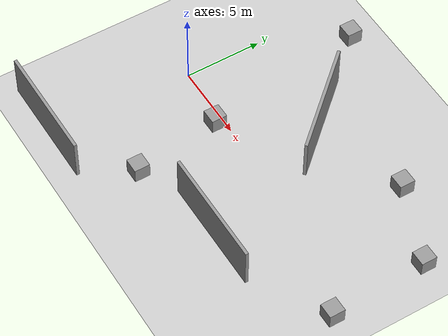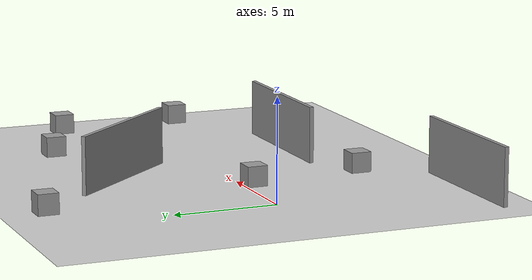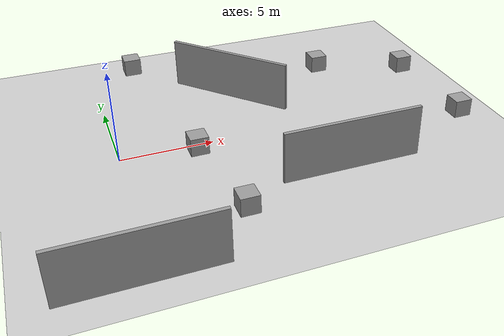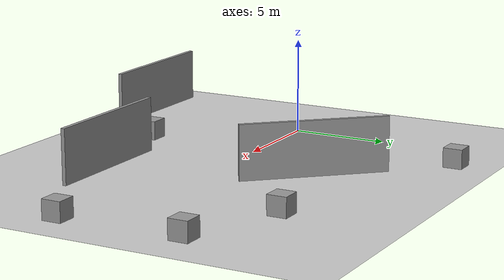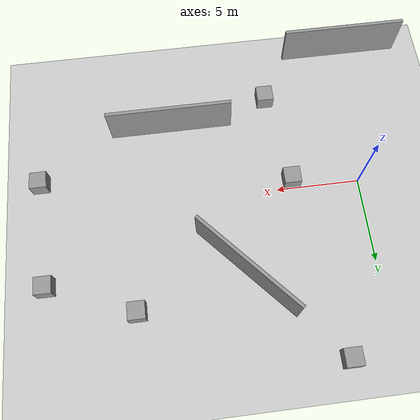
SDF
<sdf version="1.5">
 <world name="default">
  <model name="ground_plane">
   <static>1</static>
   <link name="link">
    <collision name="collision">
     <geometry><plane><normal>0 0 1</normal><size>100 100</size></plane></geometry>
     <surface><friction><ode><mu>100</mu><mu2>50</mu2></ode></friction></surface>
    </collision>
    <visual name="visual">
     <cast_shadows>0</cast_shadows>
     <geometry><plane><normal>0 0 1</normal><size>100 100</size></plane></geometry>
     <material>
      <script><uri>file://media/materials/scripts/gazebo.material</uri><name>Gazebo/Grey</name></script>
     </material>
    </visual>
   </link>
  </model>
  <light name="sun" type="directional">
   <pose>0 0 10 0 -0 0</pose>
   <diffuse>0.8 0.8 0.8 1</diffuse>
   <specular>0.1 0.1 0.1 1</specular>
   <attenuation>
    <range>1000</range>
    <constant>0.9</constant>
    <linear>0.01</linear>
    <quadratic>0.001</quadratic>
   </attenuation>
   <direction>-0.5 0.5 -1</direction>
  </light>
  <physics name="default_physics" default="0" type="ode">
   <max_step_size>0.001</max_step_size>
   <real_time_factor>1</real_time_factor>
   <real_time_update_rate>1000</real_time_update_rate>
  </physics>
  <gravity>0 0 -9.81</gravity>
  <magnetic_field>6e-06 2.3e-05 -4.2e-05</magnetic_field>
  <atmosphere type="adiabatic"/>
  <scene><ambient>0.4 0.4 0.4 1</ambient><background>0.7 0.7 0.7 1</background><shadows>1</shadows></scene>
  <spherical_coordinates>
   <surface_model>EARTH_WGS84</surface_model>
   <latitude_deg>0</latitude_deg>
   <longitude_deg>0</longitude_deg>
   <elevation>0</elevation>
   <heading_deg>0</heading_deg>
  </spherical_coordinates>
  <audio><device>default</device></audio>
  <model name="grey_wall">
   <static>1</static>
   <link name="link">
    <pose>0 0 1.4 0 -0 0</pose>
    <collision name="collision"><geometry><box><size>7.5 0.2 2.8</size></box></geometry></collision>
    <visual name="visual">
     <cast_shadows>0</cast_shadows>
     <geometry><box><size>7.5 0.2 2.8</size></box></geometry>
     <material>
      <script>
       <uri>model://grey_wall/materials/scripts</uri>
       <uri>model://grey_wall/materials/textures</uri>
       <name>vrc/grey_wall</name>
      </script>
     </material>
    </visual>
   </link>
   <pose>7.5327 4.77697 0 0 0 -0.837151</pose>
  </model>
  <model name="grey_wall_0">
   <static>1</static>
   <link name="link">
    <pose>0 0 1.4 0 -0 0</pose>
    <collision name="collision"><geometry><box><size>7.5 0.2 2.8</size></box></geometry></collision>
    <visual name="visual">
     <cast_shadows>0</cast_shadows>
     <geometry><box><size>7.5 0.2 2.8</size></box></geometry>
     <material>
      <script>
       <uri>model://grey_wall/materials/scripts</uri>
       <uri>model://grey_wall/materials/textures</uri>
       <name>vrc/grey_wall</name>
      </script>
     </material>
    </visual>
   </link>
   <pose>10.9526 -4.88139 0 0 -0 0</pose>
  </model>
  <model name="unit_box">
   <pose>13.8348 6.32184 0.499995 0 1e-05 0</pose>
   <link name="link">
    <inertial>
     <mass>1</mass>
     <inertia>
      <ixx>0.166667</ixx>
      <ixy>0</ixy>
      <ixz>0</ixz>
      <iyy>0.166667</iyy>
      <iyz>0</iyz>
      <izz>0.166667</izz>
     </inertia>
    </inertial>
    <collision name="collision"><geometry><box><size>1 1 1</size></box></geometry></collision>
    <visual name="visual">
     <geometry><box><size>1 1 1</size></box></geometry>
     <material>
      <script><name>Gazebo/Grey</name><uri>file://media/materials/scripts/gazebo.material</uri></script>
     </material>
    </visual>
   </link>
  </model>
  <model name="unit_box_0">
   <pose>19.1355 -2.0282 0.499995 1e-05 -0 0</pose>
   <link name="link">
    <inertial>
     <mass>1</mass>
     <inertia>
      <ixx>0.166667</ixx>
      <ixy>0</ixy>
      <ixz>0</ixz>
      <iyy>0.166667</iyy>
      <iyz>0</iyz>
      <izz>0.166667</izz>
     </inertia>
    </inertial>
    <collision name="collision"><geometry><box><size>1 1 1</size></box></geometry></collision>
    <visual name="visual">
     <geometry><box><size>1 1 1</size></box></geometry>
     <material>
      <script><name>Gazebo/Grey</name><uri>file://media/materials/scripts/gazebo.material</uri></script>
     </material>
    </visual>
   </link>
  </model>
  <model name="unit_box_1">
   <pose>18.8828 4.32059 0.499995 0 1e-05 0</pose>
   <link name="link">
    <inertial>
     <mass>1</mass>
     <inertia>
      <ixx>0.166667</ixx>
      <ixy>0</ixy>
      <ixz>0</ixz>
      <iyy>0.166667</iyy>
      <iyz>0</iyz>
      <izz>0.166667</izz>
     </inertia>
    </inertial>
    <collision name="collision"><geometry><box><size>1 1 1</size></box></geometry></collision>
    <visual name="visual">
     <geometry><box><size>1 1 1</size></box></geometry>
     <material>
      <script><name>Gazebo/Grey</name><uri>file://media/materials/scripts/gazebo.material</uri></script>
     </material>
    </visual>
   </link>
  </model>
  <model name="unit_box_2">
   <pose>4.85874 -6.27525 0.499995 1e-05 -0 0</pose>
   <link name="link">
    <inertial>
     <mass>1</mass>
     <inertia>
      <ixx>0.166667</ixx>
      <ixy>0</ixy>
      <ixz>0</ixz>
      <iyy>0.166667</iyy>
      <iyz>0</iyz>
      <izz>0.166667</izz>
     </inertia>
    </inertial>
    <collision name="collision"><geometry><box><size>1 1 1</size></box></geometry></collision>
    <visual name="visual">
     <geometry><box><size>1 1 1</size></box></geometry>
     <material>
      <script><name>Gazebo/Grey</name><uri>file://media/materials/scripts/gazebo.material</uri></script>
     </material>
    </visual>
   </link>
  </model>
  <model name="unit_box_3">
   <pose>2.60881 10.1483 0.499995 0 1e-05 0</pose>
   <link name="link">
    <inertial>
     <mass>1</mass>
     <inertia>
      <ixx>0.166667</ixx>
      <ixy>0</ixy>
      <ixz>0</ixz>
      <iyy>0.166667</iyy>
      <iyz>0</iyz>
      <izz>0.166667</izz>
     </inertia>
    </inertial>
    <collision name="collision"><geometry><box><size>1 1 1</size></box></geometry></collision>
    <visual name="visual">
     <geometry><box><size>1 1 1</size></box></geometry>
     <material>
      <script><name>Gazebo/Grey</name><uri>file://media/materials/scripts/gazebo.material</uri></script>
     </material>
    </visual>
   </link>
  </model>
  <model name="grey_wall_1">
   <static>1</static>
   <link name="link">
    <pose>0 0 1.4 0 -0 0</pose>
    <collision name="collision"><geometry><box><size>7.5 0.2 2.8</size></box></geometry></collision>
    <visual name="visual">
     <cast_shadows>0</cast_shadows>
     <geometry><box><size>7.5 0.2 2.8</size></box></geometry>
     <material>
      <script>
       <uri>model://grey_wall/materials/scripts</uri>
       <uri>model://grey_wall/materials/textures</uri>
       <name>vrc/grey_wall</name>
      </script>
     </material>
    </visual>
   </link>
   <pose>-0.605196 -9.389 0 0 -0 0</pose>
  </model>
  <model name="unit_box_4">
   <pose>4.05636 -0.521988 0.499995 -1e-05 -0 0</pose>
   <link name="link">
    <inertial>
     <mass>1</mass>
     <inertia>
      <ixx>0.166667</ixx>
      <ixy>0</ixy>
      <ixz>0</ixz>
      <iyy>0.166667</iyy>
      <iyz>0</iyz>
      <izz>0.166667</izz>
     </inertia>
    </inertial>
    <collision name="collision"><geometry><box><size>1 1 1</size></box></geometry></collision>
    <visual name="visual">
     <geometry><box><size>1 1 1</size></box></geometry>
     <material>
      <script><name>Gazebo/Grey</name><uri>file://media/materials/scripts/gazebo.material</uri></script>
     </material>
    </visual>
   </link>
  </model>
 </world>
</sdf>
